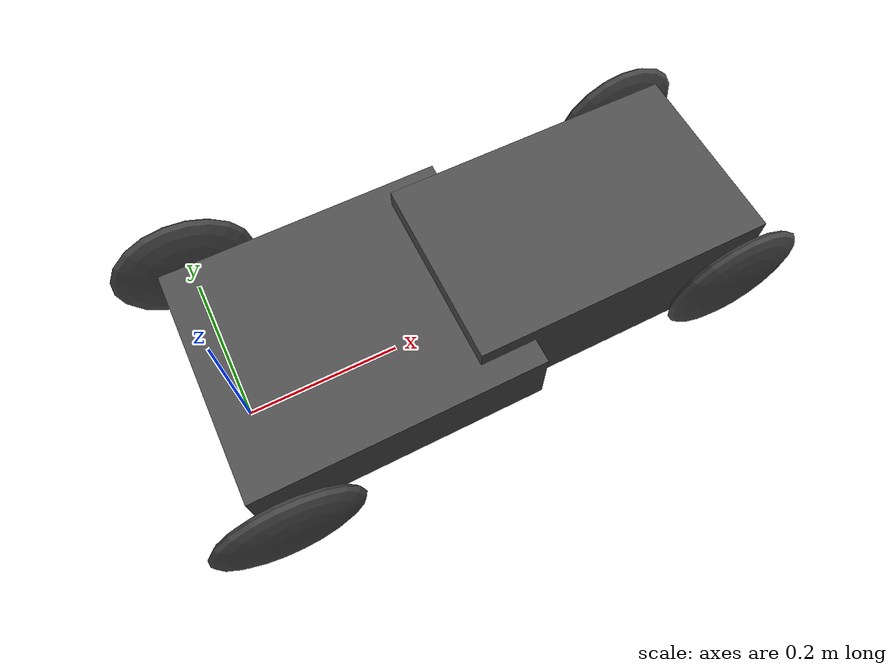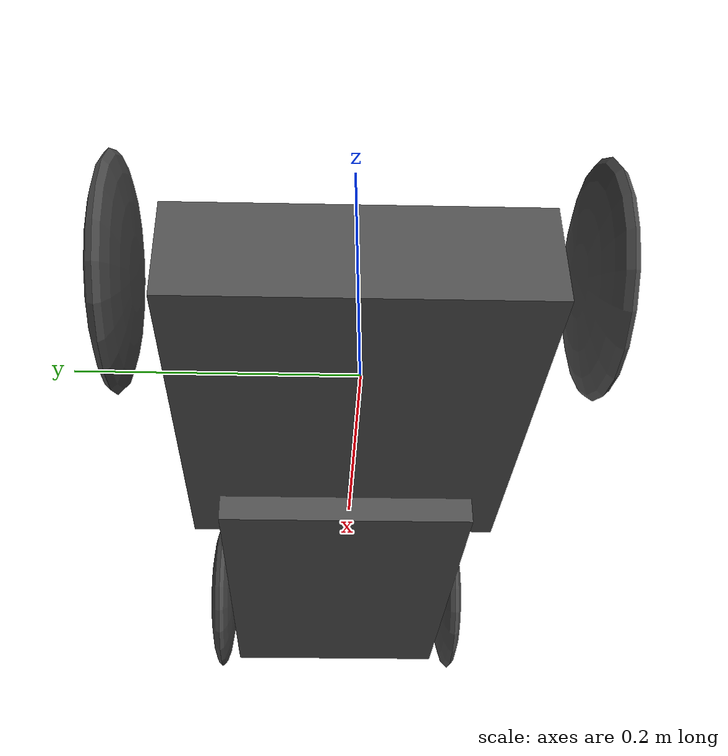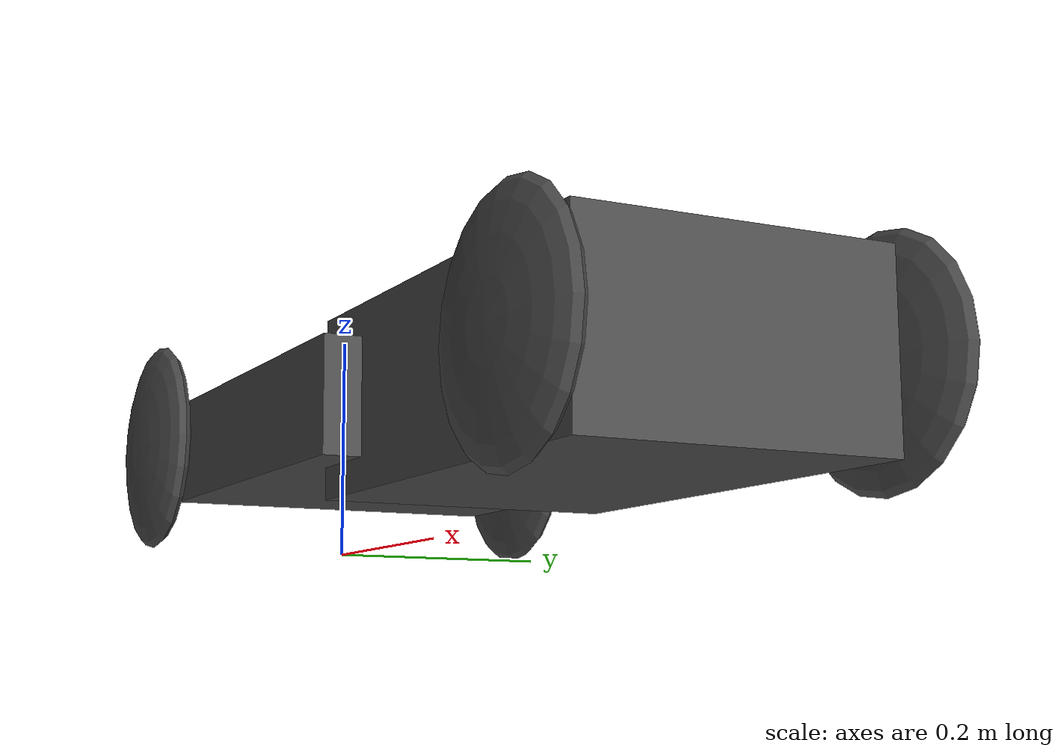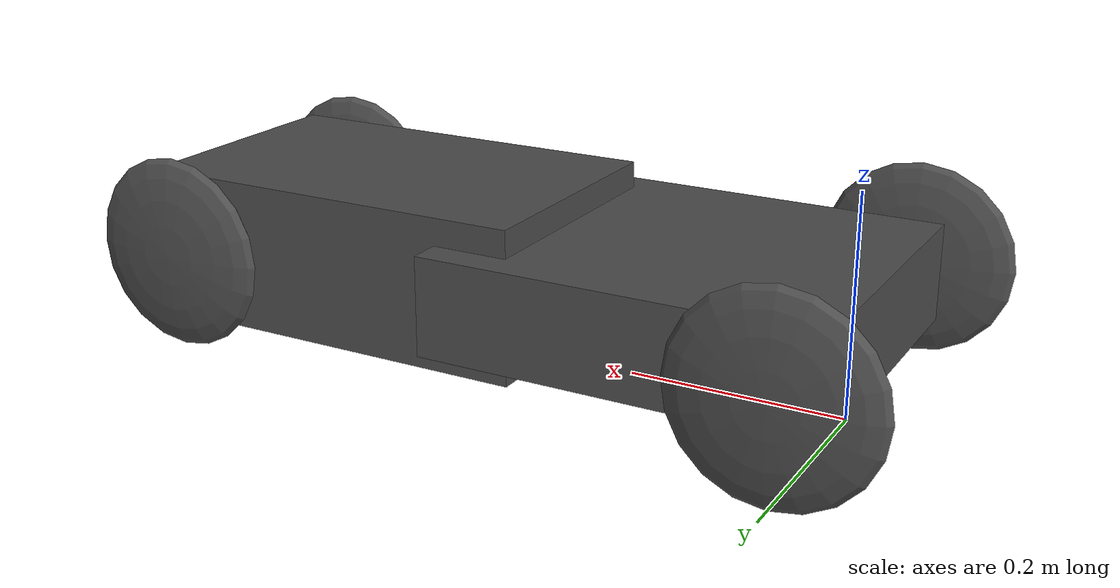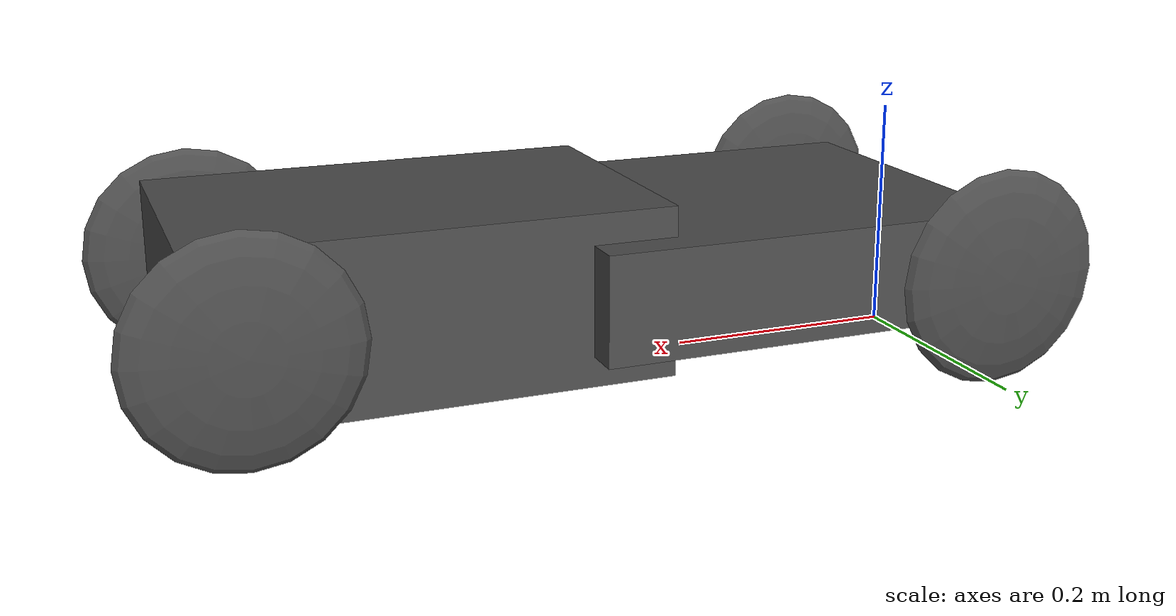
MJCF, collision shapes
<mujoco model="waist_car">
  <option timestep="0.001" iterations="50" solver="Newton" tolerance="1e-10" integrator="RK4" cone="elliptic" sdf_iterations="10" sdf_initpoints="40"/>
  <compiler angle="degree" meshdir="meshes" inertiafromgeom="false" eulerseq="XYZ"/>

  <asset>
    <material name="light_gray" rgba="0.76 0.76 0.76 1"/>
    <material name="medium_gray" rgba="0.3 0.3 0.3 1"/>
    <mesh name="base_link" file="base_link.STL"/>
    <mesh name="front body" file="front body.STL"/>
    <mesh name="front wheel" file="front wheel.STL"/>
    <mesh name="rear wheel" file="rear wheel.STL"/>
  </asset>

  <default>
    <default class="wc">
      <geom material="medium_gray"/>
      <site rgba="1 0 0 1" size="0.01" group="5"/>
      <joint frictionloss="0.0" armature="0.02"/>
      <default class="visual">
        <geom type="mesh" contype="0" conaffinity="0" group="2"/>
      </default>
      <default class="collision">
        <geom group="3"/>
      </default>
    </default>
    <default class="collision_wheel">
      <geom group="3" type="ellipsoid" size="0.09 0.09 0.015" rgba="0.3 0.3 0.3 1.0" euler="90 0 0"
        friction="0.5 0.005 0.0001" priority="1" margin="0.0" gap="0" solimp="0.0 0.95 0.001 0.5 2" solref="0.02 1"/>
    </default>
  </default>

  <worldbody>
    <body name="body_back" pos="0 0 0.09" childclass="wc">
      <freejoint/>
      <camera name="body_camera" mode="trackcom" pos="0.3 -1.5 0.5" euler="70 0 0"/>
      <inertial pos="0.14306 0.0 0.0" mass="1.70488" diaginertia="0.02035 0.06089 0.07798"/>
      <geom class="visual" name="body_back_shape" type="mesh" mesh="base_link" rgba="0.8 0.5 0.5 1.0" />
      <geom class="collision" size="0.18 0.15 0.045" pos="0.15 0.0 0.0" type="box"/>
      <site name="imu" euler="0.0 0.0 -90.0"/>
      <body name="wheel_back" pos="0 0 0" euler = "0 0 0">
        <inertial pos="0.0 0.0 0.0" mass="0.43239" diaginertia="0.01095 0.00140 0.01095"/>
        <joint name="joint_back" type = "hinge" pos = "0 0 0" axis = "0 -1 0" />
        <geom class="visual" name="wheel_back_shape" type="mesh" mesh="rear wheel" />
        <geom class="collision_wheel" pos="0 0.18 0.0"/>
        <geom class="collision_wheel" pos="0 -0.18 0.0"/>
      </body>
      <body name="body_front" pos="0.3 0 0">
        <inertial pos="0.16170 0.0 0.00" mass="5.91501" diaginertia="0.05071 0.20020 0.23789"/>
        <joint name="joint_waist" type="hinge" pos="0 0 0" axis="0 -1 0" range = "-140 140" />
        <geom class="visual" name="body_front_shape" type="mesh" mesh="front body" rgba="0.5 0.8 0.5 1.0" />
        <geom class="collision" size="0.19 0.12 0.07" pos="0.15 0.0 0.0" type="box"/>
        <body name="wheel_front" pos="0.3 0 0" euler = "0 0 0">
          <inertial pos="0.0 0.0 0.0" mass="0.35533" diaginertia="0.00655 0.00135 0.00655"/>
          <joint name="joint_front" type = "hinge" pos = "0 0 0" axis = "0 1 0" />
          <geom class="visual" name="wheel_front_shape" type="mesh" mesh="front wheel" euler = "0 0 0" />
          <geom class="collision_wheel" pos="0 0.14 0.0"/>
          <geom class="collision_wheel" pos="0 -0.14 0.0"/>
        </body>
      </body>
    </body>
  </worldbody>

  <actuator>
    <motor name="motor_back" ctrllimited="true" ctrlrange="-20 20" joint="joint_back"/>
    <motor name="motor_waist" ctrllimited="true" ctrlrange="-33 33" joint="joint_waist"/>
  </actuator>

  <sensor>
    <jointpos name="pos_waist_joint" joint="joint_waist"/>
    <jointpos name="pos_back_joint" joint="joint_back"/>
    <jointvel name="vel_waist_joint" joint="joint_waist"/>
    <jointvel name="vel_back_joint" joint="joint_back"/>
    <subtreecom name="ipos" body="body_back"/>
    <gyro name="gyro" site="imu"/>
    <accelerometer name="accel" site="imu"/>
    <framequat name="orient" objtype="site" objname="imu"/>
    <framepos name="pos_back_wheel_center" objtype="body" objname="wheel_back"/>
  </sensor>

</mujoco>
